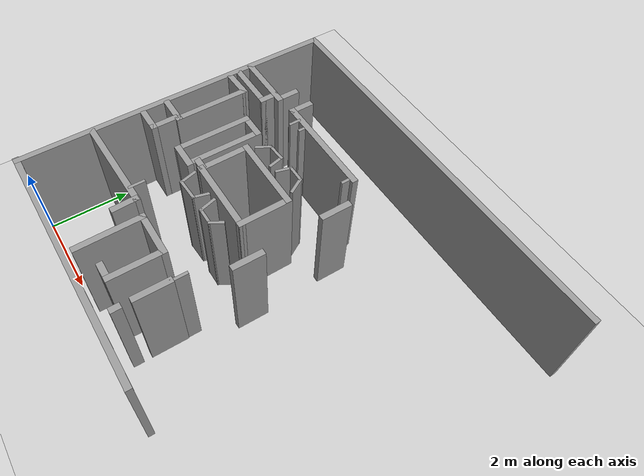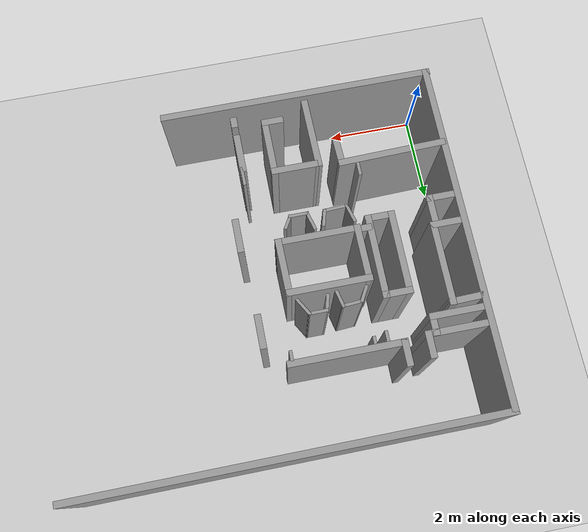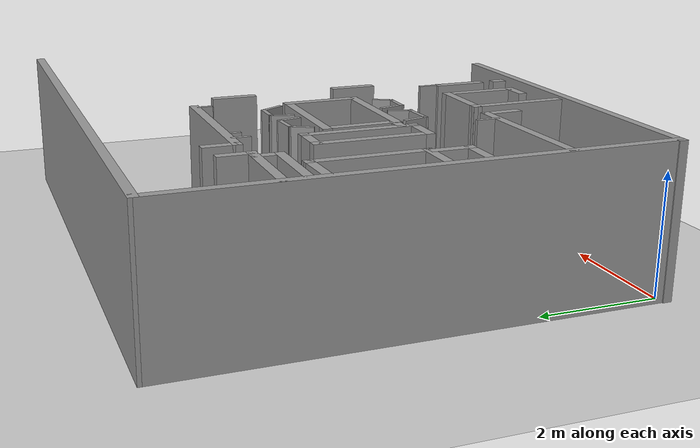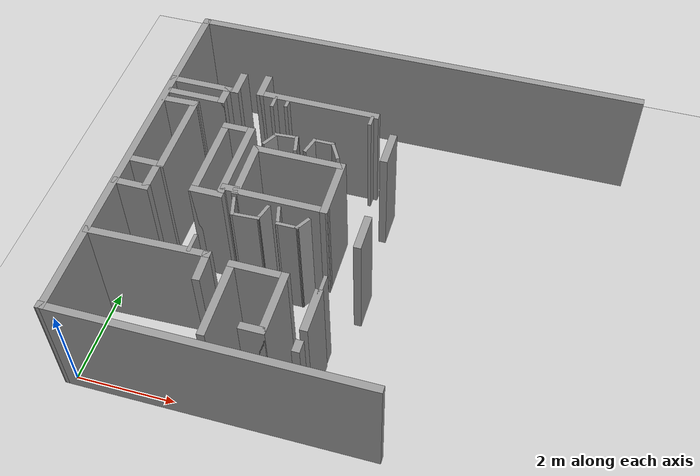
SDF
<sdf version="1.6">
 <world name="default">
  <model name="ground_plane">
   <static>1</static>
   <link name="link">
    <collision name="collision">
     <geometry><plane><normal>0 0 1</normal><size>100 100</size></plane></geometry>
     <surface><friction><ode><mu>100</mu><mu2>50</mu2></ode></friction></surface>
    </collision>
    <visual name="visual">
     <cast_shadows>0</cast_shadows>
     <geometry><plane><normal>0 0 1</normal><size>100 100</size></plane></geometry>
     <material>
      <script><uri>file://media/materials/scripts/gazebo.material</uri><name>Gazebo/Grey</name></script>
     </material>
    </visual>
   </link>
  </model>
  <model name="room4">
   <pose>4.66 3.88 0 0 -0 3.14</pose>
   <link name="Wall_0">
    <collision name="Wall_0_Collision">
     <geometry><box><size>8.014 0.15 2.5</size></box></geometry>
     <pose>0 0 1.25 0 -0 0</pose>
    </collision>
    <visual name="Wall_0_Visual">
     <pose>0 0 1.25 0 -0 0</pose>
     <geometry><box><size>8.014 0.15 2.5</size></box></geometry>
     <material>
      <script><uri>file://media/materials/scripts/gazebo.material</uri><name>Gazebo/Grey</name></script>
      <ambient>1 1 1 1</ambient>
     </material>
     <meta><layer>0</layer></meta>
    </visual>
    <pose>4.74429 0.03461 0 0 -0 -1.56965</pose>
   </link>
   <link name="Wall_1">
    <collision name="Wall_1_Collision">
     <geometry><box><size>9.58911 0.15 2.5</size></box></geometry>
     <pose>0 0 1.25 0 -0 0</pose>
    </collision>
    <visual name="Wall_1_Visual">
     <pose>0 0 1.25 0 -0 0</pose>
     <geometry><box><size>9.58911 0.15 2.5</size></box></geometry>
     <material>
      <script><uri>file://media/materials/scripts/gazebo.material</uri><name>Gazebo/Grey</name></script>
      <ambient>1 1 1 1</ambient>
     </material>
     <meta><layer>0</layer></meta>
    </visual>
    <pose>0.029286 -3.94339 0 0 -0 -3.13672</pose>
   </link>
   <link name="Wall_10">
    <collision name="Wall_10_Collision">
     <geometry><box><size>1.65013 0.15 2.5</size></box></geometry>
     <pose>0 0 1.25 0 -0 0</pose>
    </collision>
    <visual name="Wall_10_Visual">
     <pose>0 0 1.25 0 -0 0</pose>
     <geometry><box><size>1.65013 0.15 2.5</size></box></geometry>
     <material>
      <script><uri>file://media/materials/scripts/gazebo.material</uri><name>Gazebo/Grey</name></script>
      <ambient>1 1 1 1</ambient>
     </material>
     <meta><layer>0</layer></meta>
    </visual>
    <pose>1.86988 2.9697 0 0 -0 -1.55746</pose>
   </link>
   <link name="Wall_11">
    <collision name="Wall_11_Collision">
     <geometry><box><size>1.15 0.15 2.5</size></box></geometry>
     <pose>0 0 1.25 0 -0 0</pose>
    </collision>
    <visual name="Wall_11_Visual">
     <pose>0 0 1.25 0 -0 0</pose>
     <geometry><box><size>1.15 0.15 2.5</size></box></geometry>
     <material>
      <script><uri>file://media/materials/scripts/gazebo.material</uri><name>Gazebo/Grey</name></script>
      <ambient>1 1 1 1</ambient>
     </material>
     <meta><layer>0</layer></meta>
    </visual>
    <pose>1.37988 2.2197 0 0 -0 3.14159</pose>
   </link>
   <link name="Wall_126">
    <collision name="Wall_126_Collision">
     <geometry><box><size>0.43 0.07 2.5</size></box></geometry>
     <pose>0 0 1.25 0 -0 0</pose>
    </collision>
    <visual name="Wall_126_Visual">
     <pose>0 0 1.25 0 -0 0</pose>
     <geometry><box><size>0.43 0.07 2.5</size></box></geometry>
     <material>
      <script><uri>file://media/materials/scripts/gazebo.material</uri><name>Gazebo/Grey</name></script>
      <ambient>1 1 1 1</ambient>
     </material>
     <meta><layer>0</layer></meta>
    </visual>
    <pose>0.176827 2.23103 0 0 -0 -1.5708</pose>
   </link>
   <link name="Wall_128">
    <collision name="Wall_128_Collision">
     <geometry><box><size>0.4 0.07 2.5</size></box></geometry>
     <pose>0 0 1.25 0 -0 0</pose>
    </collision>
    <visual name="Wall_128_Visual">
     <pose>0 0 1.25 0 -0 0</pose>
     <geometry><box><size>0.4 0.07 2.5</size></box></geometry>
     <material>
      <script><uri>file://media/materials/scripts/gazebo.material</uri><name>Gazebo/Grey</name></script>
      <ambient>1 1 1 1</ambient>
     </material>
     <meta><layer>0</layer></meta>
    </visual>
    <pose>2.73621 1.96934 0 0 -0 -1.5708</pose>
   </link>
   <link name="Wall_13">
    <collision name="Wall_13_Collision">
     <geometry><box><size>1.35 0.15 2.5</size></box></geometry>
     <pose>0 0 1.25 0 -0 0</pose>
    </collision>
    <visual name="Wall_13_Visual">
     <pose>0 0 1.25 0 -0 0</pose>
     <geometry><box><size>1.35 0.15 2.5</size></box></geometry>
     <material>
      <script><uri>file://media/materials/scripts/gazebo.material</uri><name>Gazebo/Grey</name></script>
      <ambient>1 1 1 1</ambient>
     </material>
     <meta><layer>0</layer></meta>
    </visual>
    <pose>0.87988 2.8197 0 0 -0 1.5708</pose>
   </link>
   <link name="Wall_130">
    <collision name="Wall_130_Collision">
     <geometry><box><size>2.6 0.15 2.5</size></box></geometry>
     <pose>0 0 1.25 0 -0 0</pose>
    </collision>
    <visual name="Wall_130_Visual">
     <pose>0 0 1.25 0 -0 0</pose>
     <geometry><box><size>2.6 0.15 2.5</size></box></geometry>
     <material>
      <script><uri>file://media/materials/scripts/gazebo.material</uri><name>Gazebo/Grey</name></script>
      <ambient>1 1 1 1</ambient>
     </material>
     <meta><layer>0</layer></meta>
    </visual>
    <pose>1.62664 -2.08518 0 0 -0 0</pose>
   </link>
   <link name="Wall_132">
    <collision name="Wall_132_Collision">
     <geometry><box><size>0.25 0.07 2.5</size></box></geometry>
     <pose>0 0 1.25 0 -0 0</pose>
    </collision>
    <visual name="Wall_132_Visual">
     <pose>0 0 1.25 0 -0 0</pose>
     <geometry><box><size>0.25 0.07 2.5</size></box></geometry>
     <material>
      <script><uri>file://media/materials/scripts/gazebo.material</uri><name>Gazebo/Grey</name></script>
      <ambient>1 1 1 1</ambient>
     </material>
     <meta><layer>0</layer></meta>
    </visual>
    <pose>0.453516 -1.93307 0 0 -0 -1.5708</pose>
   </link>
   <link name="Wall_134">
    <collision name="Wall_134_Collision">
     <geometry><box><size>0.170242 0.07 2.5</size></box></geometry>
     <pose>0 0 1.25 0 -0 0</pose>
    </collision>
    <visual name="Wall_134_Visual">
     <pose>0 0 1.25 0 -0 0</pose>
     <geometry><box><size>0.170242 0.07 2.5</size></box></geometry>
     <material>
      <script><uri>file://media/materials/scripts/gazebo.material</uri><name>Gazebo/Grey</name></script>
      <ambient>1 1 1 1</ambient>
     </material>
     <meta><layer>0</layer></meta>
    </visual>
    <pose>2.23471 -1.92742 0 0 -0 -1.5708</pose>
   </link>
   <link name="Wall_136">
    <collision name="Wall_136_Collision">
     <geometry><box><size>0.3 0.07 2.5</size></box></geometry>
     <pose>0 0 1.25 0 -0 0</pose>
    </collision>
    <visual name="Wall_136_Visual">
     <pose>0 0 1.25 0 -0 0</pose>
     <geometry><box><size>0.3 0.07 2.5</size></box></geometry>
     <material>
      <script><uri>file://media/materials/scripts/gazebo.material</uri><name>Gazebo/Grey</name></script>
      <ambient>1 1 1 1</ambient>
     </material>
     <meta><layer>0</layer></meta>
    </visual>
    <pose>2.51095 -1.92354 0 0 -0 -1.5708</pose>
   </link>
   <link name="Wall_138">
    <collision name="Wall_138_Collision">
     <geometry><box><size>0.6 0.15 2.5</size></box></geometry>
     <pose>0 0 1.25 0 -0 0</pose>
    </collision>
    <visual name="Wall_138_Visual">
     <pose>0 0 1.25 0 -0 0</pose>
     <geometry><box><size>0.6 0.15 2.5</size></box></geometry>
     <material>
      <script><uri>file://media/materials/scripts/gazebo.material</uri><name>Gazebo/Grey</name></script>
      <ambient>1 1 1 1</ambient>
     </material>
     <meta><layer>0</layer></meta>
    </visual>
    <pose>2.85164 -2.31018 0 0 -0 -1.5708</pose>
   </link>
   <link name="Wall_140">
    <collision name="Wall_140_Collision">
     <geometry><box><size>1.5 0.15 2.5</size></box></geometry>
     <pose>0 0 1.25 0 -0 0</pose>
    </collision>
    <visual name="Wall_140_Visual">
     <pose>0 0 1.25 0 -0 0</pose>
     <geometry><box><size>1.5 0.15 2.5</size></box></geometry>
     <material>
      <script><uri>file://media/materials/scripts/gazebo.material</uri><name>Gazebo/Grey</name></script>
      <ambient>1 1 1 1</ambient>
     </material>
     <meta><layer>0</layer></meta>
    </visual>
    <pose>4.04991 -2.016 0 0 -0 3.14159</pose>
   </link>
   <link name="Wall_141">
    <collision name="Wall_141_Collision">
     <geometry><box><size>0.6 0.15 2.5</size></box></geometry>
     <pose>0 0 1.25 0 -0 0</pose>
    </collision>
    <visual name="Wall_141_Visual">
     <pose>0 0 1.25 0 -0 0</pose>
     <geometry><box><size>0.6 0.15 2.5</size></box></geometry>
     <material>
      <script><uri>file://media/materials/scripts/gazebo.material</uri><name>Gazebo/Grey</name></script>
      <ambient>1 1 1 1</ambient>
     </material>
     <meta><layer>0</layer></meta>
    </visual>
    <pose>3.37491 -2.241 0 0 -0 -1.5708</pose>
   </link>
   <link name="Wall_143">
    <collision name="Wall_143_Collision">
     <geometry><box><size>0.756466 0.15 2.5</size></box></geometry>
     <pose>0 0 1.25 0 -0 0</pose>
    </collision>
    <visual name="Wall_143_Visual">
     <pose>0 0 1.25 0 -0 0</pose>
     <geometry><box><size>0.756466 0.15 2.5</size></box></geometry>
     <material>
      <script><uri>file://media/materials/scripts/gazebo.material</uri><name>Gazebo/Grey</name></script>
      <ambient>1 1 1 1</ambient>
     </material>
     <meta><layer>0</layer></meta>
    </visual>
    <pose>4.35251 -1.41939 0 0 -0 -3.11309</pose>
   </link>
   <link name="Wall_145">
    <collision name="Wall_145_Collision">
     <geometry><box><size>1.9 0.15 2.5</size></box></geometry>
     <pose>0 0 1.25 0 -0 0</pose>
    </collision>
    <visual name="Wall_145_Visual">
     <pose>0 0 1.25 0 -0 0</pose>
     <geometry><box><size>1.9 0.15 2.5</size></box></geometry>
     <material>
      <script><uri>file://media/materials/scripts/gazebo.material</uri><name>Gazebo/Grey</name></script>
      <ambient>1 1 1 1</ambient>
     </material>
     <meta><layer>0</layer></meta>
    </visual>
    <pose>4.04927 -0.553037 0 0 -0 1.5708</pose>
   </link>
   <link name="Wall_147">
    <collision name="Wall_147_Collision">
     <geometry><box><size>0.67 0.15 2.5</size></box></geometry>
     <pose>0 0 1.25 0 -0 0</pose>
    </collision>
    <visual name="Wall_147_Visual">
     <pose>0 0 1.25 0 -0 0</pose>
     <geometry><box><size>0.67 0.15 2.5</size></box></geometry>
     <material>
      <script><uri>file://media/materials/scripts/gazebo.material</uri><name>Gazebo/Grey</name></script>
      <ambient>1 1 1 1</ambient>
     </material>
     <meta><layer>0</layer></meta>
    </visual>
    <pose>2.94433 -1.013 0 0 -0 0</pose>
   </link>
   <link name="Wall_149">
    <collision name="Wall_149_Collision">
     <geometry><box><size>1.9 0.15 2.5</size></box></geometry>
     <pose>0 0 1.25 0 -0 0</pose>
    </collision>
    <visual name="Wall_149_Visual">
     <pose>0 0 1.25 0 -0 0</pose>
     <geometry><box><size>1.9 0.15 2.5</size></box></geometry>
     <material>
      <script><uri>file://media/materials/scripts/gazebo.material</uri><name>Gazebo/Grey</name></script>
      <ambient>1 1 1 1</ambient>
     </material>
     <meta><layer>0</layer></meta>
    </visual>
    <pose>3.20433 -0.138003 0 0 -0 1.5708</pose>
   </link>
   <link name="Wall_15">
    <collision name="Wall_15_Collision">
     <geometry><box><size>0.9 0.15 2.5</size></box></geometry>
     <pose>0 0 1.25 0 -0 0</pose>
    </collision>
    <visual name="Wall_15_Visual">
     <pose>0 0 1.25 0 -0 0</pose>
     <geometry><box><size>0.9 0.15 2.5</size></box></geometry>
     <material>
      <script><uri>file://media/materials/scripts/gazebo.material</uri><name>Gazebo/Grey</name></script>
      <ambient>1 1 1 1</ambient>
     </material>
     <meta><layer>0</layer></meta>
    </visual>
    <pose>0.19988 2.7847 0 0 -0 -1.5708</pose>
   </link>
   <link name="Wall_151">
    <collision name="Wall_151_Collision">
     <geometry><box><size>0.75 0.15 2.5</size></box></geometry>
     <pose>0 0 1.25 0 -0 0</pose>
    </collision>
    <visual name="Wall_151_Visual">
     <pose>0 0 1.25 0 -0 0</pose>
     <geometry><box><size>0.75 0.15 2.5</size></box></geometry>
     <material>
      <script><uri>file://media/materials/scripts/gazebo.material</uri><name>Gazebo/Grey</name></script>
      <ambient>1 1 1 1</ambient>
     </material>
     <meta><layer>0</layer></meta>
    </visual>
    <pose>4.34927 0.321963 0 0 -0 0</pose>
   </link>
   <link name="Wall_153">
    <collision name="Wall_153_Collision">
     <geometry><box><size>0.75 0.15 2.5</size></box></geometry>
     <pose>0 0 1.25 0 -0 0</pose>
    </collision>
    <visual name="Wall_153_Visual">
     <pose>0 0 1.25 0 -0 0</pose>
     <geometry><box><size>0.75 0.15 2.5</size></box></geometry>
     <material>
      <script><uri>file://media/materials/scripts/gazebo.material</uri><name>Gazebo/Grey</name></script>
      <ambient>1 1 1 1</ambient>
     </material>
     <meta><layer>0</layer></meta>
    </visual>
    <pose>4.40762 0.941118 0 0 -0 3.14159</pose>
   </link>
   <link name="Wall_154">
    <collision name="Wall_154_Collision">
     <geometry><box><size>0.7 0.15 2.5</size></box></geometry>
     <pose>0 0 1.25 0 -0 0</pose>
    </collision>
    <visual name="Wall_154_Visual">
     <pose>0 0 1.25 0 -0 0</pose>
     <geometry><box><size>0.7 0.15 2.5</size></box></geometry>
     <material>
      <script><uri>file://media/materials/scripts/gazebo.material</uri><name>Gazebo/Grey</name></script>
      <ambient>1 1 1 1</ambient>
     </material>
     <meta><layer>0</layer></meta>
    </visual>
    <pose>4.10762 0.666118 0 0 -0 -1.5708</pose>
   </link>
   <link name="Wall_156">
    <collision name="Wall_156_Collision">
     <geometry><box><size>0.67 0.15 2.5</size></box></geometry>
     <pose>0 0 1.25 0 -0 0</pose>
    </collision>
    <visual name="Wall_156_Visual">
     <pose>0 0 1.25 0 -0 0</pose>
     <geometry><box><size>0.67 0.15 2.5</size></box></geometry>
     <material>
      <script><uri>file://media/materials/scripts/gazebo.material</uri><name>Gazebo/Grey</name></script>
      <ambient>1 1 1 1</ambient>
     </material>
     <meta><layer>0</layer></meta>
    </visual>
    <pose>2.94433 0.736997 0 0 -0 3.14159</pose>
   </link>
   <link name="Wall_159">
    <collision name="Wall_159_Collision">
     <geometry><box><size>1.9 0.15 2.5</size></box></geometry>
     <pose>0 0 1.25 0 -0 0</pose>
    </collision>
    <visual name="Wall_159_Visual">
     <pose>0 0 1.25 0 -0 0</pose>
     <geometry><box><size>1.9 0.15 2.5</size></box></geometry>
     <material>
      <script><uri>file://media/materials/scripts/gazebo.material</uri><name>Gazebo/Grey</name></script>
      <ambient>1 1 1 1</ambient>
     </material>
     <meta><layer>0</layer></meta>
    </visual>
    <pose>2.68433 -0.138003 0 0 -0 -1.5708</pose>
   </link>
   <link name="Wall_18">
    <collision name="Wall_18_Collision">
     <geometry><box><size>0.25 0.15 2.5</size></box></geometry>
     <pose>0 0 1.25 0 -0 0</pose>
    </collision>
    <visual name="Wall_18_Visual">
     <pose>0 0 1.25 0 -0 0</pose>
     <geometry><box><size>0.25 0.15 2.5</size></box></geometry>
     <material>
      <script><uri>file://media/materials/scripts/gazebo.material</uri><name>Gazebo/Grey</name></script>
      <ambient>1 1 1 1</ambient>
     </material>
     <meta><layer>0</layer></meta>
    </visual>
    <pose>0.19988 3.5497 0 0 -0 -1.5708</pose>
   </link>
   <link name="Wall_20">
    <collision name="Wall_20_Collision">
     <geometry><box><size>0.5 0.15 2.5</size></box></geometry>
     <pose>0 0 1.25 0 -0 0</pose>
    </collision>
    <visual name="Wall_20_Visual">
     <pose>0 0 1.25 0 -0 0</pose>
     <geometry><box><size>0.5 0.15 2.5</size></box></geometry>
     <material>
      <script><uri>file://media/materials/scripts/gazebo.material</uri><name>Gazebo/Grey</name></script>
      <ambient>1 1 1 1</ambient>
     </material>
     <meta><layer>0</layer></meta>
    </visual>
    <pose>1.05488 3.4197 0 0 -0 0</pose>
   </link>
   <link name="Wall_252">
    <collision name="Wall_252_Collision">
     <geometry><box><size>0.5 0.15 2.5</size></box></geometry>
     <pose>0 0 1.25 0 -0 0</pose>
    </collision>
    <visual name="Wall_252_Visual">
     <pose>0 0 1.25 0 -0 0</pose>
     <geometry><box><size>0.5 0.15 2.5</size></box></geometry>
     <material>
      <script><uri>file://media/materials/scripts/gazebo.material</uri><name>Gazebo/Grey</name></script>
      <ambient>1 1 1 1</ambient>
     </material>
     <meta><layer>0</layer></meta>
    </visual>
    <pose>3.54609 -1.83378 0 0 -0 -1.5708</pose>
   </link>
   <link name="Wall_254">
    <collision name="Wall_254_Collision">
     <geometry><box><size>1.25 0.15 2.5</size></box></geometry>
     <pose>0 0 1.25 0 -0 0</pose>
    </collision>
    <visual name="Wall_254_Visual">
     <pose>0 0 1.25 0 -0 0</pose>
     <geometry><box><size>1.25 0.15 2.5</size></box></geometry>
     <material>
      <script><uri>file://media/materials/scripts/gazebo.material</uri><name>Gazebo/Grey</name></script>
      <ambient>1 1 1 1</ambient>
     </material>
     <meta><layer>0</layer></meta>
    </visual>
    <pose>4.09609 -1.65878 0 0 -0 0</pose>
   </link>
   <link name="Wall_256">
    <collision name="Wall_256_Collision">
     <geometry><box><size>1.30339 0.15 2.5</size></box></geometry>
     <pose>0 0 1.25 0 -0 0</pose>
    </collision>
    <visual name="Wall_256_Visual">
     <pose>0 0 1.25 0 -0 0</pose>
     <geometry><box><size>1.30339 0.15 2.5</size></box></geometry>
     <material>
      <script><uri>file://media/materials/scripts/gazebo.material</uri><name>Gazebo/Grey</name></script>
      <ambient>1 1 1 1</ambient>
     </material>
     <meta><layer>0</layer></meta>
    </visual>
    <pose>0.662227 -0.002843 0 0 -0 -1.55879</pose>
   </link>
   <link name="Wall_257">
    <collision name="Wall_257_Collision">
     <geometry><box><size>1.9 0.15 2.5</size></box></geometry>
     <pose>0 0 1.25 0 -0 0</pose>
    </collision>
    <visual name="Wall_257_Visual">
     <pose>0 0 1.25 0 -0 0</pose>
     <geometry><box><size>1.9 0.15 2.5</size></box></geometry>
     <material>
      <script><uri>file://media/materials/scripts/gazebo.material</uri><name>Gazebo/Grey</name></script>
      <ambient>1 1 1 1</ambient>
     </material>
     <meta><layer>0</layer></meta>
    </visual>
    <pose>1.55106 -0.57903 0 0 -0 0</pose>
   </link>
   <link name="Wall_259">
    <collision name="Wall_259_Collision">
     <geometry><box><size>1.9 0.15 2.5</size></box></geometry>
     <pose>0 0 1.25 0 -0 0</pose>
    </collision>
    <visual name="Wall_259_Visual">
     <pose>0 0 1.25 0 -0 0</pose>
     <geometry><box><size>1.9 0.15 2.5</size></box></geometry>
     <material>
      <script><uri>file://media/materials/scripts/gazebo.material</uri><name>Gazebo/Grey</name></script>
      <ambient>1 1 1 1</ambient>
     </material>
     <meta><layer>0</layer></meta>
    </visual>
    <pose>1.53031 0.573344 0 0 -0 0</pose>
   </link>
   <link name="Wall_261">
    <collision name="Wall_261_Collision">
     <geometry><box><size>1.30339 0.15 2.5</size></box></geometry>
     <pose>0 0 1.25 0 -0 0</pose>
    </collision>
    <visual name="Wall_261_Visual">
     <pose>0 0 1.25 0 -0 0</pose>
     <geometry><box><size>1.30339 0.15 2.5</size></box></geometry>
     <material>
      <script><uri>file://media/materials/scripts/gazebo.material</uri><name>Gazebo/Grey</name></script>
      <ambient>1 1 1 1</ambient>
     </material>
     <meta><layer>0</layer></meta>
    </visual>
    <pose>2.41223 -0.002843 0 0 -0 -1.55879</pose>
   </link>
   <link name="Wall_265">
    <collision name="Wall_265_Collision">
     <geometry><box><size>0.35 0.15 2.5</size></box></geometry>
     <pose>0 0 1.25 0 -0 0</pose>
    </collision>
    <visual name="Wall_265_Visual">
     <pose>0 0 1.25 0 -0 0</pose>
     <geometry><box><size>0.35 0.15 2.5</size></box></geometry>
     <material>
      <script><uri>file://media/materials/scripts/gazebo.material</uri><name>Gazebo/Grey</name></script>
      <ambient>1 1 1 1</ambient>
     </material>
     <meta><layer>0</layer></meta>
    </visual>
    <pose>2.54833 0.536752 0 0 -0 0</pose>
   </link>
   <link name="Wall_267">
    <collision name="Wall_267_Collision">
     <geometry><box><size>0.35 0.07 2.5</size></box></geometry>
     <pose>0 0 1.25 0 -0 0</pose>
    </collision>
    <visual name="Wall_267_Visual">
     <pose>0 0 1.25 0 -0 0</pose>
     <geometry><box><size>0.35 0.07 2.5</size></box></geometry>
     <material>
      <script><uri>file://media/materials/scripts/gazebo.material</uri><name>Gazebo/Grey</name></script>
      <ambient>1 1 1 1</ambient>
     </material>
     <meta><layer>0</layer></meta>
    </visual>
    <pose>0.944863 0.987325 0 0 -0 1.0472</pose>
   </link>
   <link name="Wall_271">
    <collision name="Wall_271_Collision">
     <geometry><box><size>0.45 0.07 2.5</size></box></geometry>
     <pose>0 0 1.25 0 -0 0</pose>
    </collision>
    <visual name="Wall_271_Visual">
     <pose>0 0 1.25 0 -0 0</pose>
     <geometry><box><size>0.45 0.07 2.5</size></box></geometry>
     <material>
      <script><uri>file://media/materials/scripts/gazebo.material</uri><name>Gazebo/Grey</name></script>
      <ambient>1 1 1 1</ambient>
     </material>
     <meta><layer>0</layer></meta>
    </visual>
    <pose>1.20486 1.10857 0 0 -0 0</pose>
   </link>
   <link name="Wall_273">
    <collision name="Wall_273_Collision">
     <geometry><box><size>0.45 0.07 2.5</size></box></geometry>
     <pose>0 0 1.25 0 -0 0</pose>
    </collision>
    <visual name="Wall_273_Visual">
     <pose>0 0 1.25 0 -0 0</pose>
     <geometry><box><size>0.45 0.07 2.5</size></box></geometry>
     <material>
      <script><uri>file://media/materials/scripts/gazebo.material</uri><name>Gazebo/Grey</name></script>
      <ambient>1 1 1 1</ambient>
     </material>
     <meta><layer>0</layer></meta>
    </visual>
    <pose>1.44404 0.925043 0 0 -0 -1.309</pose>
   </link>
   <link name="Wall_275">
    <collision name="Wall_275_Collision">
     <geometry><box><size>0.4 0.07 2.5</size></box></geometry>
     <pose>0 0 1.25 0 -0 0</pose>
    </collision>
    <visual name="Wall_275_Visual">
     <pose>0 0 1.25 0 -0 0</pose>
     <geometry><box><size>0.4 0.07 2.5</size></box></geometry>
     <material>
      <script><uri>file://media/materials/scripts/gazebo.material</uri><name>Gazebo/Grey</name></script>
      <ambient>1 1 1 1</ambient>
     </material>
     <meta><layer>0</layer></meta>
    </visual>
    <pose>1.74089 0.933979 0 0 -0 1.309</pose>
   </link>
   <link name="Wall_279">
    <collision name="Wall_279_Collision">
     <geometry><box><size>0.568674 0.07 2.5</size></box></geometry>
     <pose>0 0 1.25 0 -0 0</pose>
    </collision>
    <visual name="Wall_279_Visual">
     <pose>0 0 1.25 0 -0 0</pose>
     <geometry><box><size>0.568674 0.07 2.5</size></box></geometry>
     <material>
      <script><uri>file://media/materials/scripts/gazebo.material</uri><name>Gazebo/Grey</name></script>
      <ambient>1 1 1 1</ambient>
     </material>
     <meta><layer>0</layer></meta>
    </visual>
    <pose>2.03278 1.10565 0 0 -0 0.049307</pose>
   </link>
   <link name="Wall_281">
    <collision name="Wall_281_Collision">
     <geometry><box><size>0.45 0.07 2.5</size></box></geometry>
     <pose>0 0 1.25 0 -0 0</pose>
    </collision>
    <visual name="Wall_281_Visual">
     <pose>0 0 1.25 0 -0 0</pose>
     <geometry><box><size>0.45 0.07 2.5</size></box></geometry>
     <material>
      <script><uri>file://media/materials/scripts/gazebo.material</uri><name>Gazebo/Grey</name></script>
      <ambient>1 1 1 1</ambient>
     </material>
     <meta><layer>0</layer></meta>
    </visual>
    <pose>2.33113 0.934424 0 0 -0 -1.309</pose>
   </link>
   <link name="Wall_283">
    <collision name="Wall_283_Collision">
     <geometry><box><size>0.4 0.07 2.5</size></box></geometry>
     <pose>0 0 1.25 0 -0 0</pose>
    </collision>
    <visual name="Wall_283_Visual">
     <pose>0 0 1.25 0 -0 0</pose>
     <geometry><box><size>0.4 0.07 2.5</size></box></geometry>
     <material>
      <script><uri>file://media/materials/scripts/gazebo.material</uri><name>Gazebo/Grey</name></script>
      <ambient>1 1 1 1</ambient>
     </material>
     <meta><layer>0</layer></meta>
    </visual>
    <pose>1.42562 -0.947992 0 0 -0 -1.8326</pose>
   </link>
   <link name="Wall_285">
    <collision name="Wall_285_Collision">
     <geometry><box><size>0.45 0.07 2.5</size></box></geometry>
     <pose>0 0 1.25 0 -0 0</pose>
    </collision>
    <visual name="Wall_285_Visual">
     <pose>0 0 1.25 0 -0 0</pose>
     <geometry><box><size>0.45 0.07 2.5</size></box></geometry>
     <material>
      <script><uri>file://media/materials/scripts/gazebo.material</uri><name>Gazebo/Grey</name></script>
      <ambient>1 1 1 1</ambient>
     </material>
     <meta><layer>0</layer></meta>
    </visual>
    <pose>1.19291 -1.10737 0 0 -0 3.14159</pose>
   </link>
   <link name="Wall_287">
    <collision name="Wall_287_Collision">
     <geometry><box><size>0.45 0.07 2.5</size></box></geometry>
     <pose>0 0 1.25 0 -0 0</pose>
    </collision>
    <visual name="Wall_287_Visual">
     <pose>0 0 1.25 0 -0 0</pose>
     <geometry><box><size>0.45 0.07 2.5</size></box></geometry>
     <material>
      <script><uri>file://media/materials/scripts/gazebo.material</uri><name>Gazebo/Grey</name></script>
      <ambient>1 1 1 1</ambient>
     </material>
     <meta><layer>0</layer></meta>
    </visual>
    <pose>0.907915 -0.942825 0 0 -0 2.0944</pose>
   </link>
   <link name="Wall_290">
    <collision name="Wall_290_Collision">
     <geometry><box><size>0.392958 0.07 2.5</size></box></geometry>
     <pose>0 0 1.25 0 -0 0</pose>
    </collision>
    <visual name="Wall_290_Visual">
     <pose>0 0 1.25 0 -0 0</pose>
     <geometry><box><size>0.392958 0.07 2.5</size></box></geometry>
     <material>
      <script><uri>file://media/materials/scripts/gazebo.material</uri><name>Gazebo/Grey</name></script>
      <ambient>1 1 1 1</ambient>
     </material>
     <meta><layer>0</layer></meta>
    </visual>
    <pose>2.23538 -0.902968 0 0 -0 -2.06676</pose>
   </link>
   <link name="Wall_292">
    <collision name="Wall_292_Collision">
     <geometry><box><size>0.485706 0.07 2.5</size></box></geometry>
     <pose>0 0 1.25 0 -0 0</pose>
    </collision>
    <visual name="Wall_292_Visual">
     <pose>0 0 1.25 0 -0 0</pose>
     <geometry><box><size>0.485706 0.07 2.5</size></box></geometry>
     <material>
      <script><uri>file://media/materials/scripts/gazebo.material</uri><name>Gazebo/Grey</name></script>
      <ambient>1 1 1 1</ambient>
     </material>
     <meta><layer>0</layer></meta>
    </visual>
    <pose>1.9508 -1.06568 0 0 -0 -3.07539</pose>
   </link>
   <link name="Wall_294">
    <collision name="Wall_294_Collision">
     <geometry><box><size>0.4 0.07 2.5</size></box></geometry>
     <pose>0 0 1.25 0 -0 0</pose>
    </collision>
    <visual name="Wall_294_Visual">
     <pose>0 0 1.25 0 -0 0</pose>
     <geometry><box><size>0.4 0.07 2.5</size></box></geometry>
     <material>
      <script><uri>file://media/materials/scripts/gazebo.material</uri><name>Gazebo/Grey</name></script>
      <ambient>1 1 1 1</ambient>
     </material>
     <meta><layer>0</layer></meta>
    </visual>
    <pose>1.70604 -0.91866 0 0 -0 1.79711</pose>
   </link>
   <link name="Wall_5">
    <collision name="Wall_5_Collision">
     <geometry><box><size>6.25 0.15 2.5</size></box></geometry>
     <pose>0 0 1.25 0 -0 0</pose>
    </collision>
    <visual name="Wall_5_Visual">
     <pose>0 0 1.25 0 -0 0</pose>
     <geometry><box><size>6.25 0.15 2.5</size></box></geometry>
     <material>
      <script><uri>file://media/materials/scripts/gazebo.material</uri><name>Gazebo/Grey</name></script>
      <ambient>1 1 1 1</ambient>
     </material>
     <meta><layer>0</layer></meta>
    </visual>
    <pose>1.70979 3.96661 0 0 -0 0</pose>
   </link>
   <link name="Wall_7">
    <collision name="Wall_7_Collision">
     <geometry><box><size>2.46078 0.15 2.5</size></box></geometry>
     <pose>0 0 1.25 0 -0 0</pose>
    </collision>
    <visual name="Wall_7_Visual">
     <pose>0 0 1.25 0 -0 0</pose>
     <geometry><box><size>2.46078 0.15 2.5</size></box></geometry>
     <material>
      <script><uri>file://media/materials/scripts/gazebo.material</uri><name>Gazebo/Grey</name></script>
      <ambient>1 1 1 1</ambient>
     </material>
     <meta><layer>0</layer></meta>
    </visual>
    <pose>3.54488 2.167 0 0 -0 -3.11562</pose>
   </link>
   <link name="Wall_8">
    <collision name="Wall_8_Collision">
     <geometry><box><size>0.655809 0.15 2.5</size></box></geometry>
     <pose>0 0 1.25 0 -0 0</pose>
    </collision>
    <visual name="Wall_8_Visual">
     <pose>0 0 1.25 0 -0 0</pose>
     <geometry><box><size>0.655809 0.15 2.5</size></box></geometry>
     <material>
      <script><uri>file://media/materials/scripts/gazebo.material</uri><name>Gazebo/Grey</name></script>
      <ambient>1 1 1 1</ambient>
     </material>
     <meta><layer>0</layer></meta>
    </visual>
    <pose>2.37988 2.407 0 0 -0 1.61035</pose>
   </link>
   <link name="Wall_80">
    <collision name="Wall_80_Collision">
     <geometry><box><size>0.77 0.15 2.5</size></box></geometry>
     <pose>0 0 1.25 0 -0 0</pose>
    </collision>
    <visual name="Wall_80_Visual">
     <pose>0 0 1.25 0 -0 0</pose>
     <geometry><box><size>0.77 0.15 2.5</size></box></geometry>
     <material>
      <script><uri>file://media/materials/scripts/gazebo.material</uri><name>Gazebo/Grey</name></script>
      <ambient>1 1 1 1</ambient>
     </material>
     <meta><layer>0</layer></meta>
    </visual>
    <pose>-0.1785 0.884569 0 0 -0 -1.5708</pose>
   </link>
   <link name="Wall_88">
    <collision name="Wall_88_Collision">
     <geometry><box><size>0.756775 0.15 2.5</size></box></geometry>
     <pose>0 0 1.25 0 -0 0</pose>
    </collision>
    <visual name="Wall_88_Visual">
     <pose>0 0 1.25 0 -0 0</pose>
     <geometry><box><size>0.756775 0.15 2.5</size></box></geometry>
     <material>
      <script><uri>file://media/materials/scripts/gazebo.material</uri><name>Gazebo/Grey</name></script>
      <ambient>1 1 1 1</ambient>
     </material>
     <meta><layer>0</layer></meta>
    </visual>
    <pose>-0.085925 -1.29094 0 0 -0 -1.5708</pose>
   </link>
   <static>1</static>
  </model>
 </world>
</sdf>
